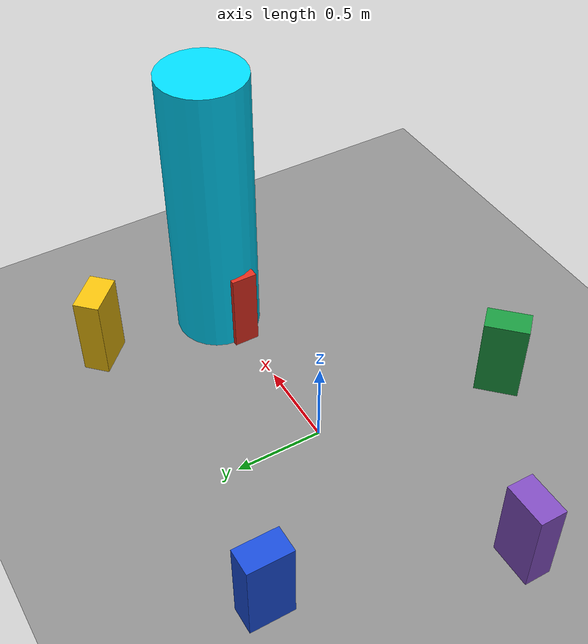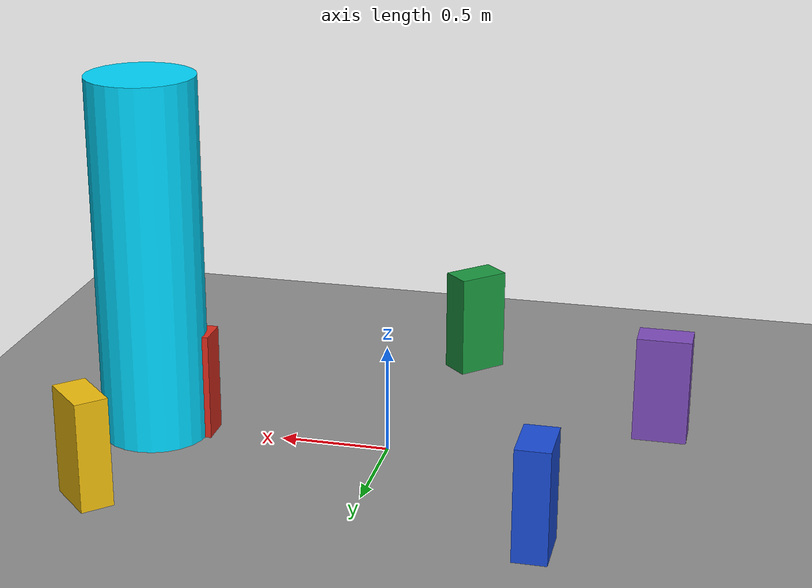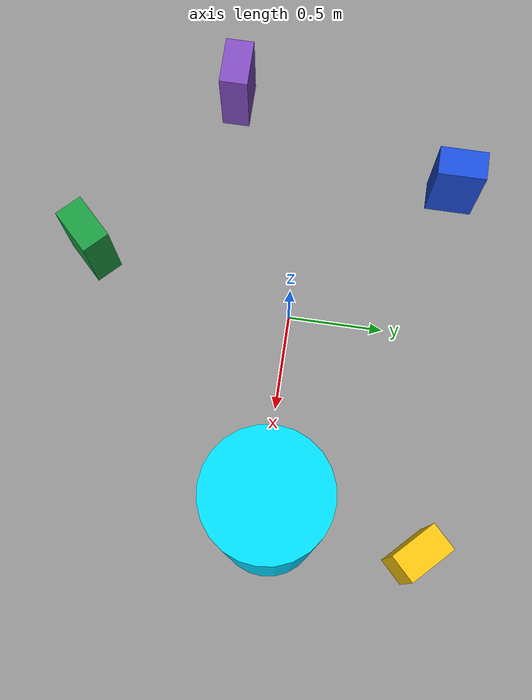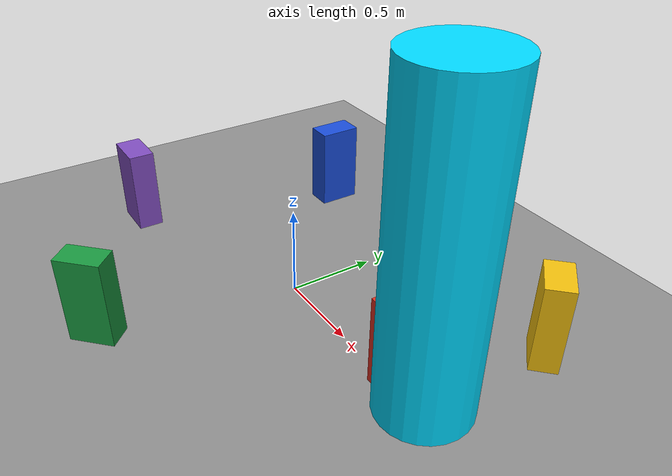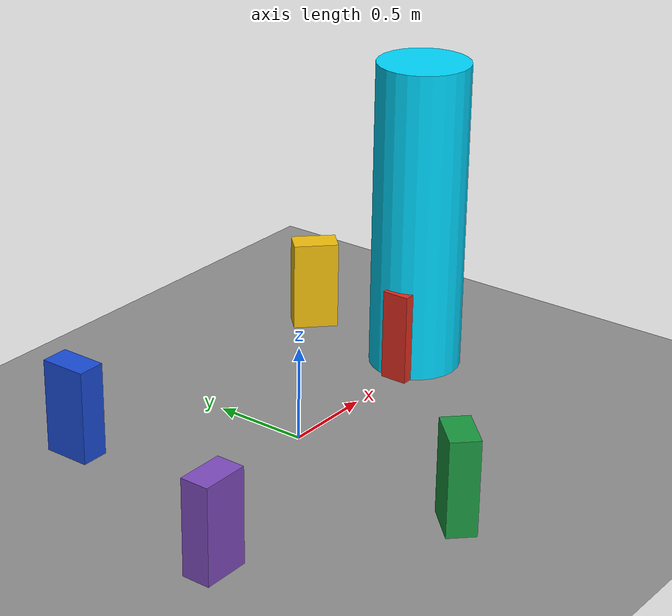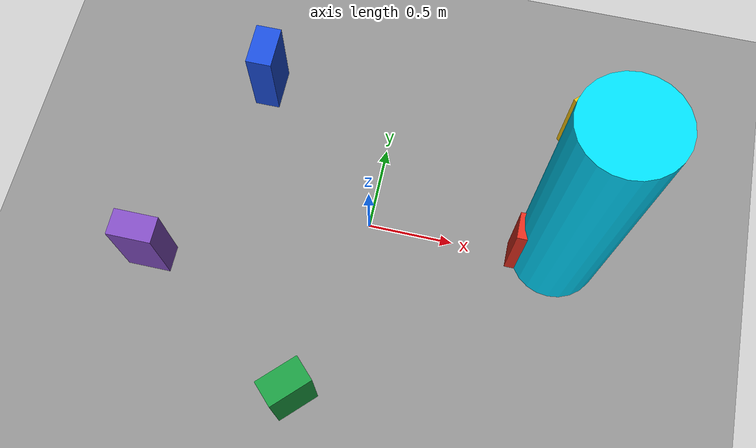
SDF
<sdf version="1.7">
 <world name="center_stage4_five_boxes_slow_human">
  <light name="sun" type="directional">
   <pose>0 0 10 0 0 0</pose>
   <diffuse>0.8 0.8 0.8 1</diffuse>
   <specular>0.2 0.2 0.2 1</specular>
   <attenuation>
    <range>1000</range>
    <constant>0.9</constant>
    <linear>0.01</linear>
    <quadratic>0.001</quadratic>
   </attenuation>
   <direction>-0.5 0.1 -0.9</direction>
  </light>
  <model name="ground_plane">
   <static>true</static>
   <link name="link">
    <collision name="collision">
     <geometry><plane><normal>0 0 1</normal><size>100 100</size></plane></geometry>
    </collision>
    <visual name="visual">
     <cast_shadows>0</cast_shadows>
     <geometry><plane><normal>0 0 1</normal><size>100 100</size></plane></geometry>
     <material><ambient>0.56 0.56 0.56 1</ambient><diffuse>0.56 0.56 0.56 1</diffuse></material>
    </visual>
   </link>
  </model>
  <gravity>0 0 -9.8</gravity>
  <physics type="ode">
   <max_step_size>0.001</max_step_size>
   <real_time_factor>1</real_time_factor>
   <real_time_update_rate>1000</real_time_update_rate>
  </physics>
  <scene>
   <ambient>0.45 0.45 0.45 1</ambient>
   <background>0.70 0.72 0.74 1</background>
   <shadows>1</shadows>
  </scene>
  <model name="center_box_1">
   <static>false</static>
   <allow_auto_disable>false</allow_auto_disable>
   <pose>0.95 0.00 0.25 0 0 0</pose>
   <link name="link">
    <inertial>
     <mass>3.0</mass>
     <inertia><ixx>0.05</ixx><ixy>0</ixy><ixz>0</ixz><iyy>0.05</iyy><iyz>0</iyz><izz>0.05</izz></inertia>
    </inertial>
    <gravity>false</gravity>
    <kinematic>true</kinematic>
    <collision name="collision">
     <geometry><box><size>0.25 0.15 0.50</size></box></geometry>
     <surface>
      <friction><ode><mu>1.0</mu><mu2>1.0</mu2></ode></friction>
      <bounce><restitution_coefficient>0</restitution_coefficient><threshold>1000000</threshold></bounce>
      <contact>
       <ode>
        <soft_cfm>0.001</soft_cfm>
        <soft_erp>0.2</soft_erp>
        <kp>1000000</kp>
        <kd>10</kd>
        <max_vel>0.05</max_vel>
        <min_depth>0.001</min_depth>
       </ode>
      </contact>
     </surface>
    </collision>
    <visual name="visual">
     <geometry><box><size>0.25 0.15 0.50</size></box></geometry>
     <material><ambient>0.88 0.18 0.12 1</ambient><diffuse>0.88 0.18 0.12 1</diffuse></material>
    </visual>
   </link>
  </model>
  <model name="center_box_2">
   <static>false</static>
   <allow_auto_disable>false</allow_auto_disable>
   <pose>-0.80 0.78 0.25 0 0 1.570796</pose>
   <link name="link">
    <inertial>
     <mass>3.0</mass>
     <inertia><ixx>0.05</ixx><ixy>0</ixy><ixz>0</ixz><iyy>0.05</iyy><iyz>0</iyz><izz>0.05</izz></inertia>
    </inertial>
    <gravity>false</gravity>
    <kinematic>true</kinematic>
    <collision name="collision">
     <geometry><box><size>0.25 0.15 0.50</size></box></geometry>
     <surface>
      <friction><ode><mu>1.0</mu><mu2>1.0</mu2></ode></friction>
      <bounce><restitution_coefficient>0</restitution_coefficient><threshold>1000000</threshold></bounce>
      <contact>
       <ode>
        <soft_cfm>0.001</soft_cfm>
        <soft_erp>0.2</soft_erp>
        <kp>1000000</kp>
        <kd>10</kd>
        <max_vel>0.05</max_vel>
        <min_depth>0.001</min_depth>
       </ode>
      </contact>
     </surface>
    </collision>
    <visual name="visual">
     <geometry><box><size>0.25 0.15 0.50</size></box></geometry>
     <material><ambient>0.10 0.30 0.85 1</ambient><diffuse>0.10 0.30 0.85 1</diffuse></material>
    </visual>
   </link>
  </model>
  <model name="center_box_3">
   <static>false</static>
   <allow_auto_disable>false</allow_auto_disable>
   <pose>-0.20 -1.08 0.25 0 0 0.785398</pose>
   <link name="link">
    <inertial>
     <mass>3.0</mass>
     <inertia><ixx>0.05</ixx><ixy>0</ixy><ixz>0</ixz><iyy>0.05</iyy><iyz>0</iyz><izz>0.05</izz></inertia>
    </inertial>
    <gravity>false</gravity>
    <kinematic>true</kinematic>
    <collision name="collision">
     <geometry><box><size>0.25 0.15 0.50</size></box></geometry>
     <surface>
      <friction><ode><mu>1.0</mu><mu2>1.0</mu2></ode></friction>
      <bounce><restitution_coefficient>0</restitution_coefficient><threshold>1000000</threshold></bounce>
      <contact>
       <ode>
        <soft_cfm>0.001</soft_cfm>
        <soft_erp>0.2</soft_erp>
        <kp>1000000</kp>
        <kd>10</kd>
        <max_vel>0.05</max_vel>
        <min_depth>0.001</min_depth>
       </ode>
      </contact>
     </surface>
    </collision>
    <visual name="visual">
     <geometry><box><size>0.25 0.15 0.50</size></box></geometry>
     <material><ambient>0.10 0.60 0.25 1</ambient><diffuse>0.10 0.60 0.25 1</diffuse></material>
    </visual>
   </link>
  </model>
  <model name="center_box_4">
   <static>false</static>
   <allow_auto_disable>false</allow_auto_disable>
   <pose>1.15 0.78 0.25 0 0 -0.785398</pose>
   <link name="link">
    <inertial>
     <mass>3.0</mass>
     <inertia><ixx>0.05</ixx><ixy>0</ixy><ixz>0</ixz><iyy>0.05</iyy><iyz>0</iyz><izz>0.05</izz></inertia>
    </inertial>
    <gravity>false</gravity>
    <kinematic>true</kinematic>
    <collision name="collision">
     <geometry><box><size>0.25 0.15 0.50</size></box></geometry>
     <surface>
      <friction><ode><mu>1.0</mu><mu2>1.0</mu2></ode></friction>
      <bounce><restitution_coefficient>0</restitution_coefficient><threshold>1000000</threshold></bounce>
      <contact>
       <ode>
        <soft_cfm>0.001</soft_cfm>
        <soft_erp>0.2</soft_erp>
        <kp>1000000</kp>
        <kd>10</kd>
        <max_vel>0.05</max_vel>
        <min_depth>0.001</min_depth>
       </ode>
      </contact>
     </surface>
    </collision>
    <visual name="visual">
     <geometry><box><size>0.25 0.15 0.50</size></box></geometry>
     <material><ambient>0.95 0.75 0.05 1</ambient><diffuse>0.95 0.75 0.05 1</diffuse></material>
    </visual>
   </link>
  </model>
  <model name="center_box_5">
   <static>false</static>
   <allow_auto_disable>false</allow_auto_disable>
   <pose>-1.20 -0.45 0.25 0 0 0</pose>
   <link name="link">
    <inertial>
     <mass>3.0</mass>
     <inertia><ixx>0.05</ixx><ixy>0</ixy><ixz>0</ixz><iyy>0.05</iyy><iyz>0</iyz><izz>0.05</izz></inertia>
    </inertial>
    <gravity>false</gravity>
    <kinematic>true</kinematic>
    <collision name="collision">
     <geometry><box><size>0.25 0.15 0.50</size></box></geometry>
     <surface>
      <friction><ode><mu>1.0</mu><mu2>1.0</mu2></ode></friction>
      <bounce><restitution_coefficient>0</restitution_coefficient><threshold>1000000</threshold></bounce>
      <contact>
       <ode>
        <soft_cfm>0.001</soft_cfm>
        <soft_erp>0.2</soft_erp>
        <kp>1000000</kp>
        <kd>10</kd>
        <max_vel>0.05</max_vel>
        <min_depth>0.001</min_depth>
       </ode>
      </contact>
     </surface>
    </collision>
    <visual name="visual">
     <geometry><box><size>0.25 0.15 0.50</size></box></geometry>
     <material><ambient>0.50 0.30 0.75 1</ambient><diffuse>0.50 0.30 0.75 1</diffuse></material>
    </visual>
   </link>
  </model>
  <model name="center_dynamic_human_1">
   <static>false</static>
   <allow_auto_disable>false</allow_auto_disable>
   <pose>1.10 0.05 0.85 0 0 0</pose>
   <link name="link">
    <inertial>
     <mass>70.0</mass>
     <inertia><ixx>8.5</ixx><ixy>0</ixy><ixz>0</ixz><iyy>8.5</iyy><iyz>0</iyz><izz>2.2</izz></inertia>
    </inertial>
    <gravity>false</gravity>
    <kinematic>true</kinematic>
    <collision name="collision">
     <geometry><cylinder><radius>0.25</radius><length>1.70</length></cylinder></geometry>
    </collision>
    <visual name="visual">
     <geometry><cylinder><radius>0.25</radius><length>1.70</length></cylinder></geometry>
     <material><ambient>0.00 0.85 1.00 1</ambient><diffuse>0.00 0.85 1.00 1</diffuse></material>
    </visual>
   </link>
  </model>
  <plugin name="gazebo_ros_state" filename="libgazebo_ros_state.so"><update_rate>1.0</update_rate></plugin>
 </world>
</sdf>
